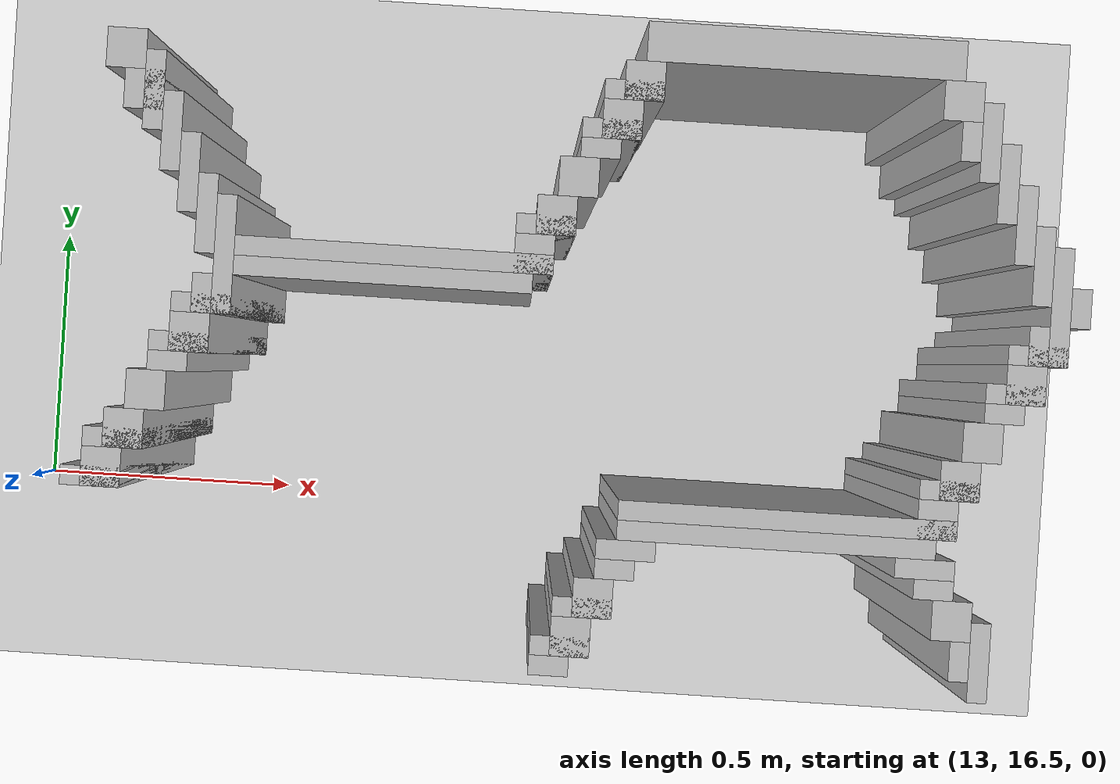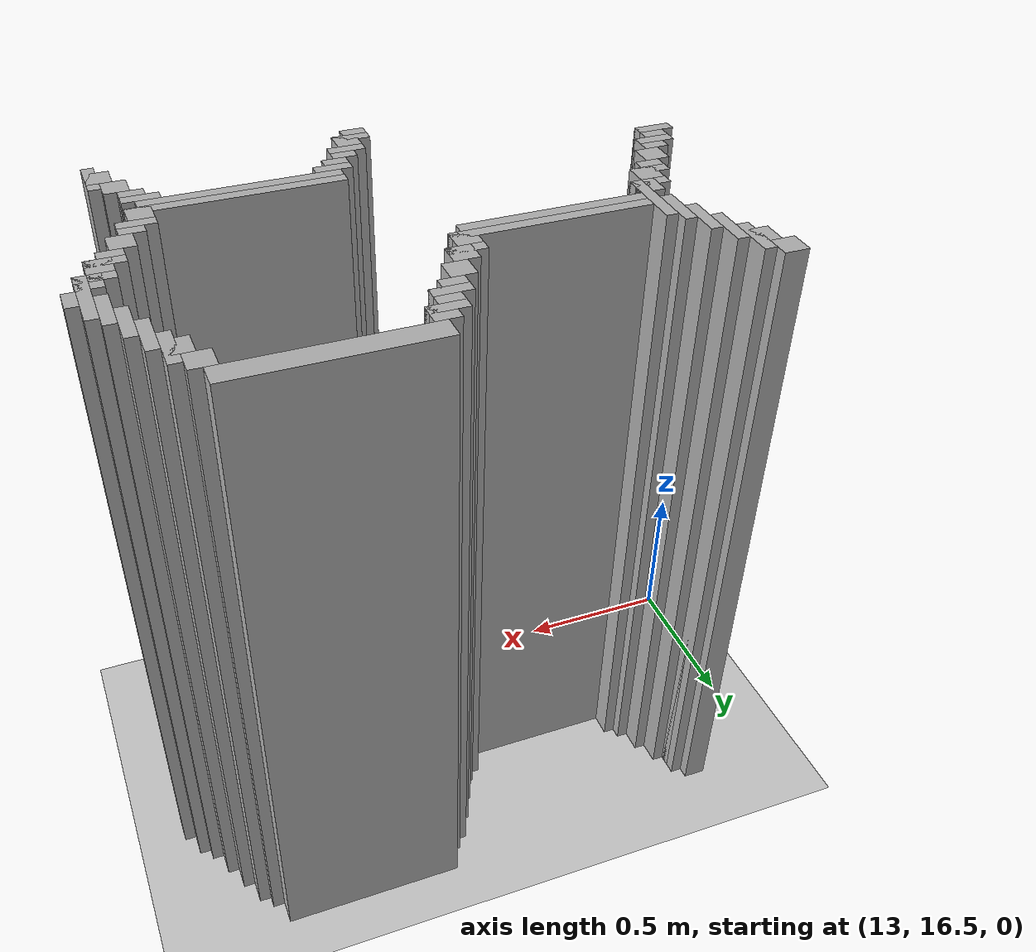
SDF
<sdf version="1.6">
 <world name="slam_world">
  <model name="ground_plane">
   <static>true</static>
   <link name="link">
    <collision name="collision">
     <geometry><plane><normal>0 0 1</normal><size>100 100</size></plane></geometry>
    </collision>
    <visual name="visual">
     <geometry><plane><normal>0 0 1</normal><size>100 100</size></plane></geometry>
     <material>
      <ambient>0.8 0.8 0.8 1</ambient>
      <diffuse>0.8 0.8 0.8 1</diffuse>
      <specular>0.8 0.8 0.8 1</specular>
     </material>
    </visual>
   </link>
  </model>
  <model name="wall_10">
   <static>true</static>
   <pose>14.443155452436194 17.366589327146173 1.0 0 0 0</pose>
   <link name="link">
    <collision name="collision">
     <geometry><box><size>0.5568445475638051 0.06960556844547564 2.0</size></box></geometry>
    </collision>
    <visual name="visual">
     <geometry><box><size>0.5568445475638051 0.06960556844547564 2.0</size></box></geometry>
     <material><ambient>0.5 0.5 0.5 1</ambient><diffuse>0.7 0.7 0.7 1</diffuse></material>
    </visual>
   </link>
  </model>
  <model name="wall_28">
   <static>true</static>
   <pose>13.259860788863108 17.296983758700694 1.0 0 0 0</pose>
   <link name="link">
    <collision name="collision">
     <geometry><box><size>0.06960556844547564 0.06960556844547564 2.0</size></box></geometry>
    </collision>
    <visual name="visual">
     <geometry><box><size>0.06960556844547564 0.06960556844547564 2.0</size></box></geometry>
     <material><ambient>0.5 0.5 0.5 1</ambient><diffuse>0.7 0.7 0.7 1</diffuse></material>
    </visual>
   </link>
  </model>
  <model name="wall_29">
   <static>true</static>
   <pose>14.164733178654291 17.296983758700694 1.0 0 0 0</pose>
   <link name="link">
    <collision name="collision">
     <geometry><box><size>0.06960556844547564 0.06960556844547564 2.0</size></box></geometry>
    </collision>
    <visual name="visual">
     <geometry><box><size>0.06960556844547564 0.06960556844547564 2.0</size></box></geometry>
     <material><ambient>0.5 0.5 0.5 1</ambient><diffuse>0.7 0.7 0.7 1</diffuse></material>
    </visual>
   </link>
  </model>
  <model name="wall_30">
   <static>true</static>
   <pose>14.721577726218097 17.296983758700694 1.0 0 0 0</pose>
   <link name="link">
    <collision name="collision">
     <geometry><box><size>0.06960556844547564 0.06960556844547564 2.0</size></box></geometry>
    </collision>
    <visual name="visual">
     <geometry><box><size>0.06960556844547564 0.06960556844547564 2.0</size></box></geometry>
     <material><ambient>0.5 0.5 0.5 1</ambient><diffuse>0.7 0.7 0.7 1</diffuse></material>
    </visual>
   </link>
  </model>
  <model name="wall_48">
   <static>true</static>
   <pose>13.312064965197216 17.22737819025522 1.0 0 0 0</pose>
   <link name="link">
    <collision name="collision">
     <geometry><box><size>0.03480278422273782 0.13921113689095127 2.0</size></box></geometry>
    </collision>
    <visual name="visual">
     <geometry><box><size>0.03480278422273782 0.13921113689095127 2.0</size></box></geometry>
     <material><ambient>0.5 0.5 0.5 1</ambient><diffuse>0.7 0.7 0.7 1</diffuse></material>
    </visual>
   </link>
  </model>
  <model name="wall_49">
   <static>true</static>
   <pose>14.147331786542923 17.279582366589327 1.0 0 0 0</pose>
   <link name="link">
    <collision name="collision">
     <geometry><box><size>0.10440835266821345 0.03480278422273782 2.0</size></box></geometry>
    </collision>
    <visual name="visual">
     <geometry><box><size>0.10440835266821345 0.03480278422273782 2.0</size></box></geometry>
     <material><ambient>0.5 0.5 0.5 1</ambient><diffuse>0.7 0.7 0.7 1</diffuse></material>
    </visual>
   </link>
  </model>
  <model name="wall_50">
   <static>true</static>
   <pose>14.773781902552203 17.22737819025522 1.0 0 0 0</pose>
   <link name="link">
    <collision name="collision">
     <geometry><box><size>0.03480278422273782 0.13921113689095127 2.0</size></box></geometry>
    </collision>
    <visual name="visual">
     <geometry><box><size>0.03480278422273782 0.13921113689095127 2.0</size></box></geometry>
     <material><ambient>0.5 0.5 0.5 1</ambient><diffuse>0.7 0.7 0.7 1</diffuse></material>
    </visual>
   </link>
  </model>
  <model name="wall_68">
   <static>true</static>
   <pose>13.294663573085847 17.22737819025522 1.0 0 0 0</pose>
   <link name="link">
    <collision name="collision">
     <geometry><box><size>0.06960556844547564 0.06960556844547564 2.0</size></box></geometry>
    </collision>
    <visual name="visual">
     <geometry><box><size>0.06960556844547564 0.06960556844547564 2.0</size></box></geometry>
     <material><ambient>0.5 0.5 0.5 1</ambient><diffuse>0.7 0.7 0.7 1</diffuse></material>
    </visual>
   </link>
  </model>
  <model name="wall_69">
   <static>true</static>
   <pose>14.129930394431554 17.22737819025522 1.0 0 0 0</pose>
   <link name="link">
    <collision name="collision">
     <geometry><box><size>0.06960556844547564 0.06960556844547564 2.0</size></box></geometry>
    </collision>
    <visual name="visual">
     <geometry><box><size>0.06960556844547564 0.06960556844547564 2.0</size></box></geometry>
     <material><ambient>0.5 0.5 0.5 1</ambient><diffuse>0.7 0.7 0.7 1</diffuse></material>
    </visual>
   </link>
  </model>
  <model name="wall_70">
   <static>true</static>
   <pose>14.756380510440835 17.22737819025522 1.0 0 0 0</pose>
   <link name="link">
    <collision name="collision">
     <geometry><box><size>0.06960556844547564 0.06960556844547564 2.0</size></box></geometry>
    </collision>
    <visual name="visual">
     <geometry><box><size>0.06960556844547564 0.06960556844547564 2.0</size></box></geometry>
     <material><ambient>0.5 0.5 0.5 1</ambient><diffuse>0.7 0.7 0.7 1</diffuse></material>
    </visual>
   </link>
  </model>
  <model name="wall_88">
   <static>true</static>
   <pose>13.346867749419953 17.157772621809745 1.0 0 0 0</pose>
   <link name="link">
    <collision name="collision">
     <geometry><box><size>0.03480278422273782 0.13921113689095127 2.0</size></box></geometry>
    </collision>
    <visual name="visual">
     <geometry><box><size>0.03480278422273782 0.13921113689095127 2.0</size></box></geometry>
     <material><ambient>0.5 0.5 0.5 1</ambient><diffuse>0.7 0.7 0.7 1</diffuse></material>
    </visual>
   </link>
  </model>
  <model name="wall_89">
   <static>true</static>
   <pose>14.112529002320185 17.209976798143853 1.0 0 0 0</pose>
   <link name="link">
    <collision name="collision">
     <geometry><box><size>0.10440835266821345 0.03480278422273782 2.0</size></box></geometry>
    </collision>
    <visual name="visual">
     <geometry><box><size>0.10440835266821345 0.03480278422273782 2.0</size></box></geometry>
     <material><ambient>0.5 0.5 0.5 1</ambient><diffuse>0.7 0.7 0.7 1</diffuse></material>
    </visual>
   </link>
  </model>
  <model name="wall_90">
   <static>true</static>
   <pose>14.80858468677494 17.157772621809745 1.0 0 0 0</pose>
   <link name="link">
    <collision name="collision">
     <geometry><box><size>0.03480278422273782 0.13921113689095127 2.0</size></box></geometry>
    </collision>
    <visual name="visual">
     <geometry><box><size>0.03480278422273782 0.13921113689095127 2.0</size></box></geometry>
     <material><ambient>0.5 0.5 0.5 1</ambient><diffuse>0.7 0.7 0.7 1</diffuse></material>
    </visual>
   </link>
  </model>
  <model name="wall_100">
   <static>true</static>
   <pose>14.095127610208817 17.17517401392111 1.0 0 0 0</pose>
   <link name="link">
    <collision name="collision">
     <geometry><box><size>0.06960556844547564 0.03480278422273782 2.0</size></box></geometry>
    </collision>
    <visual name="visual">
     <geometry><box><size>0.06960556844547564 0.03480278422273782 2.0</size></box></geometry>
     <material><ambient>0.5 0.5 0.5 1</ambient><diffuse>0.7 0.7 0.7 1</diffuse></material>
    </visual>
   </link>
  </model>
  <model name="wall_118">
   <static>true</static>
   <pose>13.38167053364269 17.08816705336427 1.0 0 0 0</pose>
   <link name="link">
    <collision name="collision">
     <geometry><box><size>0.03480278422273782 0.13921113689095127 2.0</size></box></geometry>
    </collision>
    <visual name="visual">
     <geometry><box><size>0.03480278422273782 0.13921113689095127 2.0</size></box></geometry>
     <material><ambient>0.5 0.5 0.5 1</ambient><diffuse>0.7 0.7 0.7 1</diffuse></material>
    </visual>
   </link>
  </model>
  <model name="wall_119">
   <static>true</static>
   <pose>14.06032482598608 17.122969837587007 1.0 0 0 0</pose>
   <link name="link">
    <collision name="collision">
     <geometry><box><size>0.06960556844547564 0.06960556844547564 2.0</size></box></geometry>
    </collision>
    <visual name="visual">
     <geometry><box><size>0.06960556844547564 0.06960556844547564 2.0</size></box></geometry>
     <material><ambient>0.5 0.5 0.5 1</ambient><diffuse>0.7 0.7 0.7 1</diffuse></material>
    </visual>
   </link>
  </model>
  <model name="wall_120">
   <static>true</static>
   <pose>14.84338747099768 17.08816705336427 1.0 0 0 0</pose>
   <link name="link">
    <collision name="collision">
     <geometry><box><size>0.03480278422273782 0.13921113689095127 2.0</size></box></geometry>
    </collision>
    <visual name="visual">
     <geometry><box><size>0.03480278422273782 0.13921113689095127 2.0</size></box></geometry>
     <material><ambient>0.5 0.5 0.5 1</ambient><diffuse>0.7 0.7 0.7 1</diffuse></material>
    </visual>
   </link>
  </model>
  <model name="wall_138">
   <static>true</static>
   <pose>13.416473317865428 17.01856148491879 1.0 0 0 0</pose>
   <link name="link">
    <collision name="collision">
     <geometry><box><size>0.03480278422273782 0.13921113689095127 2.0</size></box></geometry>
    </collision>
    <visual name="visual">
     <geometry><box><size>0.03480278422273782 0.13921113689095127 2.0</size></box></geometry>
     <material><ambient>0.5 0.5 0.5 1</ambient><diffuse>0.7 0.7 0.7 1</diffuse></material>
    </visual>
   </link>
  </model>
  <model name="wall_139">
   <static>true</static>
   <pose>14.02552204176334 17.053364269141532 1.0 0 0 0</pose>
   <link name="link">
    <collision name="collision">
     <geometry><box><size>0.06960556844547564 0.06960556844547564 2.0</size></box></geometry>
    </collision>
    <visual name="visual">
     <geometry><box><size>0.06960556844547564 0.06960556844547564 2.0</size></box></geometry>
     <material><ambient>0.5 0.5 0.5 1</ambient><diffuse>0.7 0.7 0.7 1</diffuse></material>
    </visual>
   </link>
  </model>
  <model name="wall_140">
   <static>true</static>
   <pose>14.878190255220417 17.01856148491879 1.0 0 0 0</pose>
   <link name="link">
    <collision name="collision">
     <geometry><box><size>0.03480278422273782 0.13921113689095127 2.0</size></box></geometry>
    </collision>
    <visual name="visual">
     <geometry><box><size>0.03480278422273782 0.13921113689095127 2.0</size></box></geometry>
     <material><ambient>0.5 0.5 0.5 1</ambient><diffuse>0.7 0.7 0.7 1</diffuse></material>
    </visual>
   </link>
  </model>
  <model name="wall_158">
   <static>true</static>
   <pose>13.451276102088167 16.948955916473317 1.0 0 0 0</pose>
   <link name="link">
    <collision name="collision">
     <geometry><box><size>0.03480278422273782 0.2088167053364269 2.0</size></box></geometry>
    </collision>
    <visual name="visual">
     <geometry><box><size>0.03480278422273782 0.2088167053364269 2.0</size></box></geometry>
     <material><ambient>0.5 0.5 0.5 1</ambient><diffuse>0.7 0.7 0.7 1</diffuse></material>
    </visual>
   </link>
  </model>
  <model name="wall_159">
   <static>true</static>
   <pose>14.008120649651971 17.035962877030162 1.0 0 0 0</pose>
   <link name="link">
    <collision name="collision">
     <geometry><box><size>0.10440835266821345 0.03480278422273782 2.0</size></box></geometry>
    </collision>
    <visual name="visual">
     <geometry><box><size>0.10440835266821345 0.03480278422273782 2.0</size></box></geometry>
     <material><ambient>0.5 0.5 0.5 1</ambient><diffuse>0.7 0.7 0.7 1</diffuse></material>
    </visual>
   </link>
  </model>
  <model name="wall_160">
   <static>true</static>
   <pose>14.912993039443155 16.948955916473317 1.0 0 0 0</pose>
   <link name="link">
    <collision name="collision">
     <geometry><box><size>0.03480278422273782 0.2088167053364269 2.0</size></box></geometry>
    </collision>
    <visual name="visual">
     <geometry><box><size>0.03480278422273782 0.2088167053364269 2.0</size></box></geometry>
     <material><ambient>0.5 0.5 0.5 1</ambient><diffuse>0.7 0.7 0.7 1</diffuse></material>
    </visual>
   </link>
  </model>
  <model name="wall_170">
   <static>true</static>
   <pose>13.990719257540603 16.983758700696054 1.0 0 0 0</pose>
   <link name="link">
    <collision name="collision">
     <geometry><box><size>0.06960556844547564 0.06960556844547564 2.0</size></box></geometry>
    </collision>
    <visual name="visual">
     <geometry><box><size>0.06960556844547564 0.06960556844547564 2.0</size></box></geometry>
     <material><ambient>0.5 0.5 0.5 1</ambient><diffuse>0.7 0.7 0.7 1</diffuse></material>
    </visual>
   </link>
  </model>
  <model name="wall_180">
   <static>true</static>
   <pose>13.747099767981437 16.966357308584687 1.0 0 0 0</pose>
   <link name="link">
    <collision name="collision">
     <geometry><box><size>0.5568445475638051 0.03480278422273782 2.0</size></box></geometry>
    </collision>
    <visual name="visual">
     <geometry><box><size>0.5568445475638051 0.03480278422273782 2.0</size></box></geometry>
     <material><ambient>0.5 0.5 0.5 1</ambient><diffuse>0.7 0.7 0.7 1</diffuse></material>
    </visual>
   </link>
  </model>
  <model name="wall_181">
   <static>true</static>
   <pose>14.947795823665892 16.948955916473317 1.0 0 0 0</pose>
   <link name="link">
    <collision name="collision">
     <geometry><box><size>0.03480278422273782 0.06960556844547564 2.0</size></box></geometry>
    </collision>
    <visual name="visual">
     <geometry><box><size>0.03480278422273782 0.06960556844547564 2.0</size></box></geometry>
     <material><ambient>0.5 0.5 0.5 1</ambient><diffuse>0.7 0.7 0.7 1</diffuse></material>
    </visual>
   </link>
  </model>
  <model name="wall_191">
   <static>true</static>
   <pose>13.729698375870068 16.93155452436195 1.0 0 0 0</pose>
   <link name="link">
    <collision name="collision">
     <geometry><box><size>0.5220417633410672 0.03480278422273782 2.0</size></box></geometry>
    </collision>
    <visual name="visual">
     <geometry><box><size>0.5220417633410672 0.03480278422273782 2.0</size></box></geometry>
     <material><ambient>0.5 0.5 0.5 1</ambient><diffuse>0.7 0.7 0.7 1</diffuse></material>
    </visual>
   </link>
  </model>
  <model name="wall_200">
   <static>true</static>
   <pose>13.433874709976797 16.87935034802784 1.0 0 0 0</pose>
   <link name="link">
    <collision name="collision">
     <geometry><box><size>0.06960556844547564 0.06960556844547564 2.0</size></box></geometry>
    </collision>
    <visual name="visual">
     <geometry><box><size>0.06960556844547564 0.06960556844547564 2.0</size></box></geometry>
     <material><ambient>0.5 0.5 0.5 1</ambient><diffuse>0.7 0.7 0.7 1</diffuse></material>
    </visual>
   </link>
  </model>
  <model name="wall_201">
   <static>true</static>
   <pose>14.895591647331786 16.87935034802784 1.0 0 0 0</pose>
   <link name="link">
    <collision name="collision">
     <geometry><box><size>0.06960556844547564 0.06960556844547564 2.0</size></box></geometry>
    </collision>
    <visual name="visual">
     <geometry><box><size>0.06960556844547564 0.06960556844547564 2.0</size></box></geometry>
     <material><ambient>0.5 0.5 0.5 1</ambient><diffuse>0.7 0.7 0.7 1</diffuse></material>
    </visual>
   </link>
  </model>
  <model name="wall_210">
   <static>true</static>
   <pose>13.416473317865428 16.86194895591647 1.0 0 0 0</pose>
   <link name="link">
    <collision name="collision">
     <geometry><box><size>0.10440835266821345 0.03480278422273782 2.0</size></box></geometry>
    </collision>
    <visual name="visual">
     <geometry><box><size>0.10440835266821345 0.03480278422273782 2.0</size></box></geometry>
     <material><ambient>0.5 0.5 0.5 1</ambient><diffuse>0.7 0.7 0.7 1</diffuse></material>
    </visual>
   </link>
  </model>
  <model name="wall_211">
   <static>true</static>
   <pose>14.878190255220417 16.86194895591647 1.0 0 0 0</pose>
   <link name="link">
    <collision name="collision">
     <geometry><box><size>0.10440835266821345 0.03480278422273782 2.0</size></box></geometry>
    </collision>
    <visual name="visual">
     <geometry><box><size>0.10440835266821345 0.03480278422273782 2.0</size></box></geometry>
     <material><ambient>0.5 0.5 0.5 1</ambient><diffuse>0.7 0.7 0.7 1</diffuse></material>
    </visual>
   </link>
  </model>
  <model name="wall_220">
   <static>true</static>
   <pose>13.39907192575406 16.809744779582367 1.0 0 0 0</pose>
   <link name="link">
    <collision name="collision">
     <geometry><box><size>0.06960556844547564 0.06960556844547564 2.0</size></box></geometry>
    </collision>
    <visual name="visual">
     <geometry><box><size>0.06960556844547564 0.06960556844547564 2.0</size></box></geometry>
     <material><ambient>0.5 0.5 0.5 1</ambient><diffuse>0.7 0.7 0.7 1</diffuse></material>
    </visual>
   </link>
  </model>
  <model name="wall_221">
   <static>true</static>
   <pose>14.860788863109049 16.809744779582367 1.0 0 0 0</pose>
   <link name="link">
    <collision name="collision">
     <geometry><box><size>0.06960556844547564 0.06960556844547564 2.0</size></box></geometry>
    </collision>
    <visual name="visual">
     <geometry><box><size>0.06960556844547564 0.06960556844547564 2.0</size></box></geometry>
     <material><ambient>0.5 0.5 0.5 1</ambient><diffuse>0.7 0.7 0.7 1</diffuse></material>
    </visual>
   </link>
  </model>
  <model name="wall_230">
   <static>true</static>
   <pose>13.38167053364269 16.792343387470996 1.0 0 0 0</pose>
   <link name="link">
    <collision name="collision">
     <geometry><box><size>0.10440835266821345 0.03480278422273782 2.0</size></box></geometry>
    </collision>
    <visual name="visual">
     <geometry><box><size>0.10440835266821345 0.03480278422273782 2.0</size></box></geometry>
     <material><ambient>0.5 0.5 0.5 1</ambient><diffuse>0.7 0.7 0.7 1</diffuse></material>
    </visual>
   </link>
  </model>
  <model name="wall_231">
   <static>true</static>
   <pose>14.84338747099768 16.792343387470996 1.0 0 0 0</pose>
   <link name="link">
    <collision name="collision">
     <geometry><box><size>0.10440835266821345 0.03480278422273782 2.0</size></box></geometry>
    </collision>
    <visual name="visual">
     <geometry><box><size>0.10440835266821345 0.03480278422273782 2.0</size></box></geometry>
     <material><ambient>0.5 0.5 0.5 1</ambient><diffuse>0.7 0.7 0.7 1</diffuse></material>
    </visual>
   </link>
  </model>
  <model name="wall_236">
   <static>true</static>
   <pose>13.364269141531322 16.75754060324826 1.0 0 0 0</pose>
   <link name="link">
    <collision name="collision">
     <geometry><box><size>0.06960556844547564 0.03480278422273782 2.0</size></box></geometry>
    </collision>
    <visual name="visual">
     <geometry><box><size>0.06960556844547564 0.03480278422273782 2.0</size></box></geometry>
     <material><ambient>0.5 0.5 0.5 1</ambient><diffuse>0.7 0.7 0.7 1</diffuse></material>
    </visual>
   </link>
  </model>
  <model name="wall_237">
   <static>true</static>
   <pose>14.825986078886311 16.75754060324826 1.0 0 0 0</pose>
   <link name="link">
    <collision name="collision">
     <geometry><box><size>0.06960556844547564 0.03480278422273782 2.0</size></box></geometry>
    </collision>
    <visual name="visual">
     <geometry><box><size>0.06960556844547564 0.03480278422273782 2.0</size></box></geometry>
     <material><ambient>0.5 0.5 0.5 1</ambient><diffuse>0.7 0.7 0.7 1</diffuse></material>
    </visual>
   </link>
  </model>
  <model name="wall_246">
   <static>true</static>
   <pose>13.329466357308585 16.70533642691415 1.0 0 0 0</pose>
   <link name="link">
    <collision name="collision">
     <geometry><box><size>0.06960556844547564 0.06960556844547564 2.0</size></box></geometry>
    </collision>
    <visual name="visual">
     <geometry><box><size>0.06960556844547564 0.06960556844547564 2.0</size></box></geometry>
     <material><ambient>0.5 0.5 0.5 1</ambient><diffuse>0.7 0.7 0.7 1</diffuse></material>
    </visual>
   </link>
  </model>
  <model name="wall_247">
   <static>true</static>
   <pose>14.791183294663572 16.70533642691415 1.0 0 0 0</pose>
   <link name="link">
    <collision name="collision">
     <geometry><box><size>0.06960556844547564 0.06960556844547564 2.0</size></box></geometry>
    </collision>
    <visual name="visual">
     <geometry><box><size>0.06960556844547564 0.06960556844547564 2.0</size></box></geometry>
     <material><ambient>0.5 0.5 0.5 1</ambient><diffuse>0.7 0.7 0.7 1</diffuse></material>
    </visual>
   </link>
  </model>
  <model name="wall_256">
   <static>true</static>
   <pose>13.294663573085847 16.635730858468676 1.0 0 0 0</pose>
   <link name="link">
    <collision name="collision">
     <geometry><box><size>0.06960556844547564 0.06960556844547564 2.0</size></box></geometry>
    </collision>
    <visual name="visual">
     <geometry><box><size>0.06960556844547564 0.06960556844547564 2.0</size></box></geometry>
     <material><ambient>0.5 0.5 0.5 1</ambient><diffuse>0.7 0.7 0.7 1</diffuse></material>
    </visual>
   </link>
  </model>
  <model name="wall_257">
   <static>true</static>
   <pose>14.756380510440835 16.635730858468676 1.0 0 0 0</pose>
   <link name="link">
    <collision name="collision">
     <geometry><box><size>0.06960556844547564 0.06960556844547564 2.0</size></box></geometry>
    </collision>
    <visual name="visual">
     <geometry><box><size>0.06960556844547564 0.06960556844547564 2.0</size></box></geometry>
     <material><ambient>0.5 0.5 0.5 1</ambient><diffuse>0.7 0.7 0.7 1</diffuse></material>
    </visual>
   </link>
  </model>
  <model name="wall_266">
   <static>true</static>
   <pose>13.277262180974477 16.61832946635731 1.0 0 0 0</pose>
   <link name="link">
    <collision name="collision">
     <geometry><box><size>0.10440835266821345 0.03480278422273782 2.0</size></box></geometry>
    </collision>
    <visual name="visual">
     <geometry><box><size>0.10440835266821345 0.03480278422273782 2.0</size></box></geometry>
     <material><ambient>0.5 0.5 0.5 1</ambient><diffuse>0.7 0.7 0.7 1</diffuse></material>
    </visual>
   </link>
  </model>
  <model name="wall_267">
   <static>true</static>
   <pose>14.738979118329466 16.61832946635731 1.0 0 0 0</pose>
   <link name="link">
    <collision name="collision">
     <geometry><box><size>0.10440835266821345 0.03480278422273782 2.0</size></box></geometry>
    </collision>
    <visual name="visual">
     <geometry><box><size>0.10440835266821345 0.03480278422273782 2.0</size></box></geometry>
     <material><ambient>0.5 0.5 0.5 1</ambient><diffuse>0.7 0.7 0.7 1</diffuse></material>
    </visual>
   </link>
  </model>
  <model name="wall_272">
   <static>true</static>
   <pose>13.259860788863108 16.5661252900232 1.0 0 0 0</pose>
   <link name="link">
    <collision name="collision">
     <geometry><box><size>0.06960556844547564 0.06960556844547564 2.0</size></box></geometry>
    </collision>
    <visual name="visual">
     <geometry><box><size>0.06960556844547564 0.06960556844547564 2.0</size></box></geometry>
     <material><ambient>0.5 0.5 0.5 1</ambient><diffuse>0.7 0.7 0.7 1</diffuse></material>
    </visual>
   </link>
  </model>
  <model name="wall_273">
   <static>true</static>
   <pose>14.721577726218097 16.5661252900232 1.0 0 0 0</pose>
   <link name="link">
    <collision name="collision">
     <geometry><box><size>0.06960556844547564 0.06960556844547564 2.0</size></box></geometry>
    </collision>
    <visual name="visual">
     <geometry><box><size>0.06960556844547564 0.06960556844547564 2.0</size></box></geometry>
     <material><ambient>0.5 0.5 0.5 1</ambient><diffuse>0.7 0.7 0.7 1</diffuse></material>
    </visual>
   </link>
  </model>
  <model name="wall_285">
   <static>true</static>
   <pose>13.24245939675174 16.54872389791183 1.0 0 0 0</pose>
   <link name="link">
    <collision name="collision">
     <geometry><box><size>0.10440835266821345 0.03480278422273782 2.0</size></box></geometry>
    </collision>
    <visual name="visual">
     <geometry><box><size>0.10440835266821345 0.03480278422273782 2.0</size></box></geometry>
     <material><ambient>0.5 0.5 0.5 1</ambient><diffuse>0.7 0.7 0.7 1</diffuse></material>
    </visual>
   </link>
  </model>
  <model name="wall_286">
   <static>true</static>
   <pose>14.460556844547563 16.54872389791183 1.0 0 0 0</pose>
   <link name="link">
    <collision name="collision">
     <geometry><box><size>0.5916473317865429 0.03480278422273782 2.0</size></box></geometry>
    </collision>
    <visual name="visual">
     <geometry><box><size>0.5916473317865429 0.03480278422273782 2.0</size></box></geometry>
     <material><ambient>0.5 0.5 0.5 1</ambient><diffuse>0.7 0.7 0.7 1</diffuse></material>
    </visual>
   </link>
  </model>
  <model name="wall_292">
   <static>true</static>
   <pose>14.443155452436194 16.513921113689094 1.0 0 0 0</pose>
   <link name="link">
    <collision name="collision">
     <geometry><box><size>0.5568445475638051 0.03480278422273782 2.0</size></box></geometry>
    </collision>
    <visual name="visual">
     <geometry><box><size>0.5568445475638051 0.03480278422273782 2.0</size></box></geometry>
     <material><ambient>0.5 0.5 0.5 1</ambient><diffuse>0.7 0.7 0.7 1</diffuse></material>
    </visual>
   </link>
  </model>
  <model name="wall_304">
   <static>true</static>
   <pose>14.18213457076566 16.479118329466356 1.0 0 0 0</pose>
   <link name="link">
    <collision name="collision">
     <geometry><box><size>0.10440835266821345 0.03480278422273782 2.0</size></box></geometry>
    </collision>
    <visual name="visual">
     <geometry><box><size>0.10440835266821345 0.03480278422273782 2.0</size></box></geometry>
     <material><ambient>0.5 0.5 0.5 1</ambient><diffuse>0.7 0.7 0.7 1</diffuse></material>
    </visual>
   </link>
  </model>
  <model name="wall_305">
   <static>true</static>
   <pose>14.704176334106728 16.479118329466356 1.0 0 0 0</pose>
   <link name="link">
    <collision name="collision">
     <geometry><box><size>0.10440835266821345 0.03480278422273782 2.0</size></box></geometry>
    </collision>
    <visual name="visual">
     <geometry><box><size>0.10440835266821345 0.03480278422273782 2.0</size></box></geometry>
     <material><ambient>0.5 0.5 0.5 1</ambient><diffuse>0.7 0.7 0.7 1</diffuse></material>
    </visual>
   </link>
  </model>
  <model name="wall_314">
   <static>true</static>
   <pose>14.164733178654291 16.44431554524362 1.0 0 0 0</pose>
   <link name="link">
    <collision name="collision">
     <geometry><box><size>0.06960556844547564 0.03480278422273782 2.0</size></box></geometry>
    </collision>
    <visual name="visual">
     <geometry><box><size>0.06960556844547564 0.03480278422273782 2.0</size></box></geometry>
     <material><ambient>0.5 0.5 0.5 1</ambient><diffuse>0.7 0.7 0.7 1</diffuse></material>
    </visual>
   </link>
  </model>
  <model name="wall_315">
   <static>true</static>
   <pose>14.721577726218097 16.44431554524362 1.0 0 0 0</pose>
   <link name="link">
    <collision name="collision">
     <geometry><box><size>0.06960556844547564 0.03480278422273782 2.0</size></box></geometry>
    </collision>
    <visual name="visual">
     <geometry><box><size>0.06960556844547564 0.03480278422273782 2.0</size></box></geometry>
     <material><ambient>0.5 0.5 0.5 1</ambient><diffuse>0.7 0.7 0.7 1</diffuse></material>
    </visual>
   </link>
  </model>
  <model name="wall_327">
   <static>true</static>
   <pose>14.129930394431554 16.39211136890951 1.0 0 0 0</pose>
   <link name="link">
    <collision name="collision">
     <geometry><box><size>0.06960556844547564 0.06960556844547564 2.0</size></box></geometry>
    </collision>
    <visual name="visual">
     <geometry><box><size>0.06960556844547564 0.06960556844547564 2.0</size></box></geometry>
     <material><ambient>0.5 0.5 0.5 1</ambient><diffuse>0.7 0.7 0.7 1</diffuse></material>
    </visual>
   </link>
  </model>
  <model name="wall_328">
   <static>true</static>
   <pose>14.756380510440835 16.39211136890951 1.0 0 0 0</pose>
   <link name="link">
    <collision name="collision">
     <geometry><box><size>0.06960556844547564 0.06960556844547564 2.0</size></box></geometry>
    </collision>
    <visual name="visual">
     <geometry><box><size>0.06960556844547564 0.06960556844547564 2.0</size></box></geometry>
     <material><ambient>0.5 0.5 0.5 1</ambient><diffuse>0.7 0.7 0.7 1</diffuse></material>
    </visual>
   </link>
  </model>
  <model name="wall_340">
   <static>true</static>
   <pose>14.112529002320185 16.374709976798144 1.0 0 0 0</pose>
   <link name="link">
    <collision name="collision">
     <geometry><box><size>0.10440835266821345 0.03480278422273782 2.0</size></box></geometry>
    </collision>
    <visual name="visual">
     <geometry><box><size>0.10440835266821345 0.03480278422273782 2.0</size></box></geometry>
     <material><ambient>0.5 0.5 0.5 1</ambient><diffuse>0.7 0.7 0.7 1</diffuse></material>
    </visual>
   </link>
  </model>
  <model name="wall_341">
   <static>true</static>
   <pose>14.80858468677494 16.322505800464036 1.0 0 0 0</pose>
   <link name="link">
    <collision name="collision">
     <geometry><box><size>0.03480278422273782 0.13921113689095127 2.0</size></box></geometry>
    </collision>
    <visual name="visual">
     <geometry><box><size>0.03480278422273782 0.13921113689095127 2.0</size></box></geometry>
     <material><ambient>0.5 0.5 0.5 1</ambient><diffuse>0.7 0.7 0.7 1</diffuse></material>
    </visual>
   </link>
  </model>
  <model name="wall_353">
   <static>true</static>
   <pose>14.095127610208817 16.322505800464036 1.0 0 0 0</pose>
   <link name="link">
    <collision name="collision">
     <geometry><box><size>0.06960556844547564 0.06960556844547564 2.0</size></box></geometry>
    </collision>
    <visual name="visual">
     <geometry><box><size>0.06960556844547564 0.06960556844547564 2.0</size></box></geometry>
     <material><ambient>0.5 0.5 0.5 1</ambient><diffuse>0.7 0.7 0.7 1</diffuse></material>
    </visual>
   </link>
  </model>
  <model name="wall_354">
   <static>true</static>
   <pose>14.791183294663572 16.322505800464036 1.0 0 0 0</pose>
   <link name="link">
    <collision name="collision">
     <geometry><box><size>0.06960556844547564 0.06960556844547564 2.0</size></box></geometry>
    </collision>
    <visual name="visual">
     <geometry><box><size>0.06960556844547564 0.06960556844547564 2.0</size></box></geometry>
     <material><ambient>0.5 0.5 0.5 1</ambient><diffuse>0.7 0.7 0.7 1</diffuse></material>
    </visual>
   </link>
  </model>
  <model name="wall_366">
   <static>true</static>
   <pose>14.077726218097448 16.30510440835267 1.0 0 0 0</pose>
   <link name="link">
    <collision name="collision">
     <geometry><box><size>0.10440835266821345 0.03480278422273782 2.0</size></box></geometry>
    </collision>
    <visual name="visual">
     <geometry><box><size>0.10440835266821345 0.03480278422273782 2.0</size></box></geometry>
     <material><ambient>0.5 0.5 0.5 1</ambient><diffuse>0.7 0.7 0.7 1</diffuse></material>
    </visual>
   </link>
  </model>
  <model name="wall_372">
   <static>true</static>
   <pose>14.06032482598608 16.270301624129928 1.0 0 0 0</pose>
   <link name="link">
    <collision name="collision">
     <geometry><box><size>0.06960556844547564 0.03480278422273782 2.0</size></box></geometry>
    </collision>
    <visual name="visual">
     <geometry><box><size>0.06960556844547564 0.03480278422273782 2.0</size></box></geometry>
     <material><ambient>0.5 0.5 0.5 1</ambient><diffuse>0.7 0.7 0.7 1</diffuse></material>
    </visual>
   </link>
  </model>
 </world>
</sdf>
